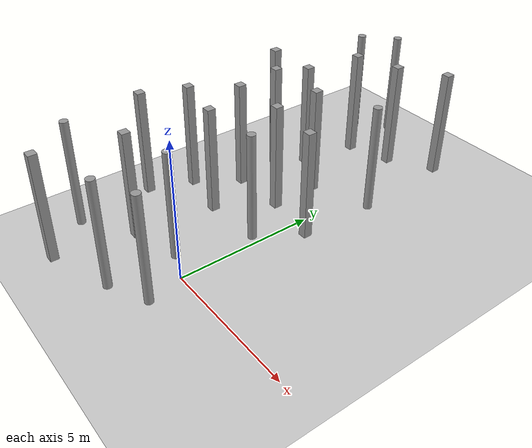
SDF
<sdf version="1.6">
 <world name="default">
  <model name="ground_plane">
   <static>1</static>
   <link name="link">
    <collision name="collision">
     <geometry><plane><normal>0 0 1</normal><size>100 100</size></plane></geometry>
    </collision>
    <visual name="visual">
     <cast_shadows>0</cast_shadows>
     <geometry><plane><normal>0 0 1</normal><size>100 100</size></plane></geometry>
     <material>
      <script><uri>file://media/materials/scripts/gazebo.material</uri><name>Gazebo/Gray</name></script>
     </material>
    </visual>
   </link>
  </model>
  <model name="unit_box">
   <link name="link">
    <inertial>
     <mass>1000</mass>
     <inertia><ixx>166.667</ixx><ixy>0</ixy><ixz>0</ixz><iyy>166.667</iyy><iyz>0</iyz><izz>166.667</izz></inertia>
    </inertial>
    <visual name="visual">
     <geometry><box><size>0.3 0.3 4</size></box></geometry>
     <material>
      <script><name>Gazebo/Grey</name><uri>file://media/materials/scripts/gazebo.material</uri></script>
      <shader type="vertex"><normal_map>__default__</normal_map></shader>
      <ambient>0.3 0.3 0.3 1</ambient>
      <diffuse>0.7 0.7 0.7 1</diffuse>
      <specular>0.01 0.01 0.01 1</specular>
      <emissive>0 0 0 1</emissive>
     </material>
    </visual>
    <collision name="collision">
     <geometry><box><size>0.3 0.3 4</size></box></geometry>
     <surface>
      <friction>
       <ode><mu>1</mu><mu2>1</mu2><fdir1>0 0 0</fdir1><slip1>0</slip1><slip2>0</slip2></ode>
       <torsional>
        <coefficient>1</coefficient>
        <patch_radius>0</patch_radius>
        <surface_radius>0</surface_radius>
        <use_patch_radius>1</use_patch_radius>
        <ode><slip>0</slip></ode>
       </torsional>
      </friction>
      <bounce><restitution_coefficient>0</restitution_coefficient><threshold>1e+06</threshold></bounce>
      <contact>
       <collide_without_contact>0</collide_without_contact>
       <collide_without_contact_bitmask>1</collide_without_contact_bitmask>
       <collide_bitmask>1</collide_bitmask>
       <ode>
        <soft_cfm>0</soft_cfm>
        <soft_erp>0.2</soft_erp>
        <kp>1e+13</kp>
        <kd>1</kd>
        <max_vel>0.01</max_vel>
        <min_depth>0</min_depth>
       </ode>
       <bullet>
        <split_impulse>1</split_impulse>
        <split_impulse_penetration_threshold>-0.01</split_impulse_penetration_threshold>
        <soft_cfm>0</soft_cfm>
        <soft_erp>0.2</soft_erp>
        <kp>1e+13</kp>
        <kd>1</kd>
       </bullet>
      </contact>
     </surface>
    </collision>
   </link>
   <static>0</static>
   <pose>-1.26732 4.71521 2 1e-05 -1.8e-05 -0.001323</pose>
  </model>
  <model name="unit_box_clone">
   <link name="link">
    <inertial>
     <mass>1000</mass>
     <inertia><ixx>166.667</ixx><ixy>0</ixy><ixz>0</ixz><iyy>166.667</iyy><iyz>0</iyz><izz>166.667</izz></inertia>
    </inertial>
    <visual name="visual">
     <geometry><box><size>0.3 0.3 4</size></box></geometry>
     <material>
      <script><name>Gazebo/Grey</name><uri>file://media/materials/scripts/gazebo.material</uri></script>
      <shader type="vertex"><normal_map>__default__</normal_map></shader>
      <ambient>0.3 0.3 0.3 1</ambient>
      <diffuse>0.7 0.7 0.7 1</diffuse>
      <specular>0.01 0.01 0.01 1</specular>
      <emissive>0 0 0 1</emissive>
     </material>
    </visual>
    <collision name="collision">
     <geometry><box><size>0.3 0.3 4</size></box></geometry>
     <surface>
      <friction>
       <ode><mu>1</mu><mu2>1</mu2><fdir1>0 0 0</fdir1><slip1>0</slip1><slip2>0</slip2></ode>
       <torsional>
        <coefficient>1</coefficient>
        <patch_radius>0</patch_radius>
        <surface_radius>0</surface_radius>
        <use_patch_radius>1</use_patch_radius>
        <ode><slip>0</slip></ode>
       </torsional>
      </friction>
      <bounce><restitution_coefficient>0</restitution_coefficient><threshold>1e+06</threshold></bounce>
      <contact>
       <collide_without_contact>0</collide_without_contact>
       <collide_without_contact_bitmask>1</collide_without_contact_bitmask>
       <collide_bitmask>1</collide_bitmask>
       <ode>
        <soft_cfm>0</soft_cfm>
        <soft_erp>0.2</soft_erp>
        <kp>1e+13</kp>
        <kd>1</kd>
        <max_vel>0.01</max_vel>
        <min_depth>0</min_depth>
       </ode>
       <bullet>
        <split_impulse>1</split_impulse>
        <split_impulse_penetration_threshold>-0.01</split_impulse_penetration_threshold>
        <soft_cfm>0</soft_cfm>
        <soft_erp>0.2</soft_erp>
        <kp>1e+13</kp>
        <kd>1</kd>
       </bullet>
      </contact>
     </surface>
    </collision>
   </link>
   <static>0</static>
   <pose>-2.76544 -0.051248 2 -1e-05 -7e-06 -0.002497</pose>
  </model>
  <model name="unit_box_clone_1">
   <link name="link">
    <inertial>
     <mass>1000</mass>
     <inertia><ixx>166.667</ixx><ixy>0</ixy><ixz>0</ixz><iyy>166.667</iyy><iyz>0</iyz><izz>166.667</izz></inertia>
    </inertial>
    <visual name="visual">
     <geometry><box><size>0.3 0.3 4</size></box></geometry>
     <material>
      <script><name>Gazebo/Grey</name><uri>file://media/materials/scripts/gazebo.material</uri></script>
      <shader type="vertex"><normal_map>__default__</normal_map></shader>
      <ambient>0.3 0.3 0.3 1</ambient>
      <diffuse>0.7 0.7 0.7 1</diffuse>
      <specular>0.01 0.01 0.01 1</specular>
      <emissive>0 0 0 1</emissive>
     </material>
    </visual>
    <collision name="collision">
     <geometry><box><size>0.3 0.3 4</size></box></geometry>
     <surface>
      <friction>
       <ode><mu>1</mu><mu2>1</mu2><fdir1>0 0 0</fdir1><slip1>0</slip1><slip2>0</slip2></ode>
       <torsional>
        <coefficient>1</coefficient>
        <patch_radius>0</patch_radius>
        <surface_radius>0</surface_radius>
        <use_patch_radius>1</use_patch_radius>
        <ode><slip>0</slip></ode>
       </torsional>
      </friction>
      <bounce><restitution_coefficient>0</restitution_coefficient><threshold>1e+06</threshold></bounce>
      <contact>
       <collide_without_contact>0</collide_without_contact>
       <collide_without_contact_bitmask>1</collide_without_contact_bitmask>
       <collide_bitmask>1</collide_bitmask>
       <ode>
        <soft_cfm>0</soft_cfm>
        <soft_erp>0.2</soft_erp>
        <kp>1e+13</kp>
        <kd>1</kd>
        <max_vel>0.01</max_vel>
        <min_depth>0</min_depth>
       </ode>
       <bullet>
        <split_impulse>1</split_impulse>
        <split_impulse_penetration_threshold>-0.01</split_impulse_penetration_threshold>
        <soft_cfm>0</soft_cfm>
        <soft_erp>0.2</soft_erp>
        <kp>1e+13</kp>
        <kd>1</kd>
       </bullet>
      </contact>
     </surface>
    </collision>
   </link>
   <static>0</static>
   <pose>-2.89919 7.41396 2 5e-06 1.3e-05 0.00093</pose>
  </model>
  <model name="unit_box_clone_17">
   <link name="link">
    <inertial>
     <mass>1000</mass>
     <inertia><ixx>166.667</ixx><ixy>0</ixy><ixz>0</ixz><iyy>166.667</iyy><iyz>0</iyz><izz>166.667</izz></inertia>
    </inertial>
    <visual name="visual">
     <geometry><box><size>0.3 0.3 4</size></box></geometry>
     <material>
      <script><name>Gazebo/Grey</name><uri>file://media/materials/scripts/gazebo.material</uri></script>
      <shader type="vertex"><normal_map>__default__</normal_map></shader>
      <ambient>0.3 0.3 0.3 1</ambient>
      <diffuse>0.7 0.7 0.7 1</diffuse>
      <specular>0.01 0.01 0.01 1</specular>
      <emissive>0 0 0 1</emissive>
     </material>
    </visual>
    <collision name="collision">
     <geometry><box><size>0.3 0.3 4</size></box></geometry>
     <surface>
      <friction>
       <ode><mu>1</mu><mu2>1</mu2><fdir1>0 0 0</fdir1><slip1>0</slip1><slip2>0</slip2></ode>
       <torsional>
        <coefficient>1</coefficient>
        <patch_radius>0</patch_radius>
        <surface_radius>0</surface_radius>
        <use_patch_radius>1</use_patch_radius>
        <ode><slip>0</slip></ode>
       </torsional>
      </friction>
      <bounce><restitution_coefficient>0</restitution_coefficient><threshold>1e+06</threshold></bounce>
      <contact>
       <collide_without_contact>0</collide_without_contact>
       <collide_without_contact_bitmask>1</collide_without_contact_bitmask>
       <collide_bitmask>1</collide_bitmask>
       <ode>
        <soft_cfm>0</soft_cfm>
        <soft_erp>0.2</soft_erp>
        <kp>1e+13</kp>
        <kd>1</kd>
        <max_vel>0.01</max_vel>
        <min_depth>0</min_depth>
       </ode>
       <bullet>
        <split_impulse>1</split_impulse>
        <split_impulse_penetration_threshold>-0.01</split_impulse_penetration_threshold>
        <soft_cfm>0</soft_cfm>
        <soft_erp>0.2</soft_erp>
        <kp>1e+13</kp>
        <kd>1</kd>
       </bullet>
      </contact>
     </surface>
    </collision>
   </link>
   <static>0</static>
   <pose>-2.44664 2.84688 2 1e-06 -2.9e-05 0.003248</pose>
  </model>
  <model name="unit_box_clone_19">
   <link name="link">
    <inertial>
     <mass>1000</mass>
     <inertia><ixx>166.667</ixx><ixy>0</ixy><ixz>0</ixz><iyy>166.667</iyy><iyz>0</iyz><izz>166.667</izz></inertia>
    </inertial>
    <visual name="visual">
     <geometry><box><size>0.3 0.3 4</size></box></geometry>
     <material>
      <script><name>Gazebo/Grey</name><uri>file://media/materials/scripts/gazebo.material</uri></script>
      <shader type="vertex"><normal_map>__default__</normal_map></shader>
      <ambient>0.3 0.3 0.3 1</ambient>
      <diffuse>0.7 0.7 0.7 1</diffuse>
      <specular>0.01 0.01 0.01 1</specular>
      <emissive>0 0 0 1</emissive>
     </material>
    </visual>
    <collision name="collision">
     <geometry><box><size>0.3 0.3 4</size></box></geometry>
     <surface>
      <friction>
       <ode><mu>1</mu><mu2>1</mu2><fdir1>0 0 0</fdir1><slip1>0</slip1><slip2>0</slip2></ode>
       <torsional>
        <coefficient>1</coefficient>
        <patch_radius>0</patch_radius>
        <surface_radius>0</surface_radius>
        <use_patch_radius>1</use_patch_radius>
        <ode><slip>0</slip></ode>
       </torsional>
      </friction>
      <bounce><restitution_coefficient>0</restitution_coefficient><threshold>1e+06</threshold></bounce>
      <contact>
       <collide_without_contact>0</collide_without_contact>
       <collide_without_contact_bitmask>1</collide_without_contact_bitmask>
       <collide_bitmask>1</collide_bitmask>
       <ode>
        <soft_cfm>0</soft_cfm>
        <soft_erp>0.2</soft_erp>
        <kp>1e+13</kp>
        <kd>1</kd>
        <max_vel>0.01</max_vel>
        <min_depth>0</min_depth>
       </ode>
       <bullet>
        <split_impulse>1</split_impulse>
        <split_impulse_penetration_threshold>-0.01</split_impulse_penetration_threshold>
        <soft_cfm>0</soft_cfm>
        <soft_erp>0.2</soft_erp>
        <kp>1e+13</kp>
        <kd>1</kd>
       </bullet>
      </contact>
     </surface>
    </collision>
   </link>
   <static>0</static>
   <pose>-1.32799 6.4493 2 1e-05 -1.8e-05 -0.001323</pose>
  </model>
  <model name="unit_box_clone_20">
   <link name="link">
    <inertial>
     <mass>1000</mass>
     <inertia><ixx>166.667</ixx><ixy>0</ixy><ixz>0</ixz><iyy>166.667</iyy><iyz>0</iyz><izz>166.667</izz></inertia>
    </inertial>
    <visual name="visual">
     <geometry><box><size>0.3 0.3 4</size></box></geometry>
     <material>
      <script><name>Gazebo/Grey</name><uri>file://media/materials/scripts/gazebo.material</uri></script>
      <shader type="vertex"><normal_map>__default__</normal_map></shader>
      <ambient>0.3 0.3 0.3 1</ambient>
      <diffuse>0.7 0.7 0.7 1</diffuse>
      <specular>0.01 0.01 0.01 1</specular>
      <emissive>0 0 0 1</emissive>
     </material>
    </visual>
    <collision name="collision">
     <geometry><box><size>0.3 0.3 4</size></box></geometry>
     <surface>
      <friction>
       <ode><mu>1</mu><mu2>1</mu2><fdir1>0 0 0</fdir1><slip1>0</slip1><slip2>0</slip2></ode>
       <torsional>
        <coefficient>1</coefficient>
        <patch_radius>0</patch_radius>
        <surface_radius>0</surface_radius>
        <use_patch_radius>1</use_patch_radius>
        <ode><slip>0</slip></ode>
       </torsional>
      </friction>
      <bounce><restitution_coefficient>0</restitution_coefficient><threshold>1e+06</threshold></bounce>
      <contact>
       <collide_without_contact>0</collide_without_contact>
       <collide_without_contact_bitmask>1</collide_without_contact_bitmask>
       <collide_bitmask>1</collide_bitmask>
       <ode>
        <soft_cfm>0</soft_cfm>
        <soft_erp>0.2</soft_erp>
        <kp>1e+13</kp>
        <kd>1</kd>
        <max_vel>0.01</max_vel>
        <min_depth>0</min_depth>
       </ode>
       <bullet>
        <split_impulse>1</split_impulse>
        <split_impulse_penetration_threshold>-0.01</split_impulse_penetration_threshold>
        <soft_cfm>0</soft_cfm>
        <soft_erp>0.2</soft_erp>
        <kp>1e+13</kp>
        <kd>1</kd>
       </bullet>
      </contact>
     </surface>
    </collision>
   </link>
   <static>0</static>
   <pose>0.641808 4.48448 2.00001 0 -4.9e-05 0.001002</pose>
  </model>
  <model name="unit_box_clone_21">
   <link name="link">
    <inertial>
     <mass>1000</mass>
     <inertia><ixx>166.667</ixx><ixy>0</ixy><ixz>0</ixz><iyy>166.667</iyy><iyz>0</iyz><izz>166.667</izz></inertia>
    </inertial>
    <visual name="visual">
     <geometry><box><size>0.3 0.3 4</size></box></geometry>
     <material>
      <script><name>Gazebo/Grey</name><uri>file://media/materials/scripts/gazebo.material</uri></script>
      <shader type="vertex"><normal_map>__default__</normal_map></shader>
      <ambient>0.3 0.3 0.3 1</ambient>
      <diffuse>0.7 0.7 0.7 1</diffuse>
      <specular>0.01 0.01 0.01 1</specular>
      <emissive>0 0 0 1</emissive>
     </material>
    </visual>
    <collision name="collision">
     <geometry><box><size>0.3 0.3 4</size></box></geometry>
     <surface>
      <friction>
       <ode><mu>1</mu><mu2>1</mu2><fdir1>0 0 0</fdir1><slip1>0</slip1><slip2>0</slip2></ode>
       <torsional>
        <coefficient>1</coefficient>
        <patch_radius>0</patch_radius>
        <surface_radius>0</surface_radius>
        <use_patch_radius>1</use_patch_radius>
        <ode><slip>0</slip></ode>
       </torsional>
      </friction>
      <bounce><restitution_coefficient>0</restitution_coefficient><threshold>1e+06</threshold></bounce>
      <contact>
       <collide_without_contact>0</collide_without_contact>
       <collide_without_contact_bitmask>1</collide_without_contact_bitmask>
       <collide_bitmask>1</collide_bitmask>
       <ode>
        <soft_cfm>0</soft_cfm>
        <soft_erp>0.2</soft_erp>
        <kp>1e+13</kp>
        <kd>1</kd>
        <max_vel>0.01</max_vel>
        <min_depth>0</min_depth>
       </ode>
       <bullet>
        <split_impulse>1</split_impulse>
        <split_impulse_penetration_threshold>-0.01</split_impulse_penetration_threshold>
        <soft_cfm>0</soft_cfm>
        <soft_erp>0.2</soft_erp>
        <kp>1e+13</kp>
        <kd>1</kd>
       </bullet>
      </contact>
     </surface>
    </collision>
   </link>
   <static>0</static>
   <pose>-2.57161 9.52536 2 -1.3e-05 -1.8e-05 -0.00716</pose>
  </model>
  <model name="unit_box_clone_22">
   <link name="link">
    <inertial>
     <mass>1000</mass>
     <inertia><ixx>166.667</ixx><ixy>0</ixy><ixz>0</ixz><iyy>166.667</iyy><iyz>0</iyz><izz>166.667</izz></inertia>
    </inertial>
    <visual name="visual">
     <geometry><box><size>0.3 0.3 4</size></box></geometry>
     <material>
      <script><name>Gazebo/Grey</name><uri>file://media/materials/scripts/gazebo.material</uri></script>
      <shader type="vertex"><normal_map>__default__</normal_map></shader>
      <ambient>0.3 0.3 0.3 1</ambient>
      <diffuse>0.7 0.7 0.7 1</diffuse>
      <specular>0.01 0.01 0.01 1</specular>
      <emissive>0 0 0 1</emissive>
     </material>
    </visual>
    <collision name="collision">
     <geometry><box><size>0.3 0.3 4</size></box></geometry>
     <surface>
      <friction>
       <ode><mu>1</mu><mu2>1</mu2><fdir1>0 0 0</fdir1><slip1>0</slip1><slip2>0</slip2></ode>
       <torsional>
        <coefficient>1</coefficient>
        <patch_radius>0</patch_radius>
        <surface_radius>0</surface_radius>
        <use_patch_radius>1</use_patch_radius>
        <ode><slip>0</slip></ode>
       </torsional>
      </friction>
      <bounce><restitution_coefficient>0</restitution_coefficient><threshold>1e+06</threshold></bounce>
      <contact>
       <collide_without_contact>0</collide_without_contact>
       <collide_without_contact_bitmask>1</collide_without_contact_bitmask>
       <collide_bitmask>1</collide_bitmask>
       <ode>
        <soft_cfm>0</soft_cfm>
        <soft_erp>0.2</soft_erp>
        <kp>1e+13</kp>
        <kd>1</kd>
        <max_vel>0.01</max_vel>
        <min_depth>0</min_depth>
       </ode>
       <bullet>
        <split_impulse>1</split_impulse>
        <split_impulse_penetration_threshold>-0.01</split_impulse_penetration_threshold>
        <soft_cfm>0</soft_cfm>
        <soft_erp>0.2</soft_erp>
        <kp>1e+13</kp>
        <kd>1</kd>
       </bullet>
      </contact>
     </surface>
    </collision>
   </link>
   <static>0</static>
   <pose>-0.999906 10 2 2e-06 -2.8e-05 -0.017044</pose>
  </model>
  <model name="unit_box_clone_24">
   <link name="link">
    <inertial>
     <mass>1000</mass>
     <inertia><ixx>166.667</ixx><ixy>0</ixy><ixz>0</ixz><iyy>166.667</iyy><iyz>0</iyz><izz>166.667</izz></inertia>
    </inertial>
    <visual name="visual">
     <geometry><box><size>0.3 0.3 4</size></box></geometry>
     <material>
      <script><name>Gazebo/Grey</name><uri>file://media/materials/scripts/gazebo.material</uri></script>
      <shader type="vertex"><normal_map>__default__</normal_map></shader>
      <ambient>0.3 0.3 0.3 1</ambient>
      <diffuse>0.7 0.7 0.7 1</diffuse>
      <specular>0.01 0.01 0.01 1</specular>
      <emissive>0 0 0 1</emissive>
     </material>
    </visual>
    <collision name="collision">
     <geometry><box><size>0.3 0.3 4</size></box></geometry>
     <surface>
      <friction>
       <ode><mu>1</mu><mu2>1</mu2><fdir1>0 0 0</fdir1><slip1>0</slip1><slip2>0</slip2></ode>
       <torsional>
        <coefficient>1</coefficient>
        <patch_radius>0</patch_radius>
        <surface_radius>0</surface_radius>
        <use_patch_radius>1</use_patch_radius>
        <ode><slip>0</slip></ode>
       </torsional>
      </friction>
      <bounce><restitution_coefficient>0</restitution_coefficient><threshold>1e+06</threshold></bounce>
      <contact>
       <collide_without_contact>0</collide_without_contact>
       <collide_without_contact_bitmask>1</collide_without_contact_bitmask>
       <collide_bitmask>1</collide_bitmask>
       <ode>
        <soft_cfm>0</soft_cfm>
        <soft_erp>0.2</soft_erp>
        <kp>1e+13</kp>
        <kd>1</kd>
        <max_vel>0.01</max_vel>
        <min_depth>0</min_depth>
       </ode>
       <bullet>
        <split_impulse>1</split_impulse>
        <split_impulse_penetration_threshold>-0.01</split_impulse_penetration_threshold>
        <soft_cfm>0</soft_cfm>
        <soft_erp>0.2</soft_erp>
        <kp>1e+13</kp>
        <kd>1</kd>
       </bullet>
      </contact>
     </surface>
    </collision>
   </link>
   <static>0</static>
   <pose>-4.80952 7.40663 2 5e-06 -2e-05 0.001419</pose>
  </model>
  <model name="unit_box_clone_25">
   <link name="link">
    <inertial>
     <mass>1000</mass>
     <inertia><ixx>166.667</ixx><ixy>0</ixy><ixz>0</ixz><iyy>166.667</iyy><iyz>0</iyz><izz>166.667</izz></inertia>
    </inertial>
    <visual name="visual">
     <geometry><box><size>0.3 0.3 4</size></box></geometry>
     <material>
      <script><name>Gazebo/Grey</name><uri>file://media/materials/scripts/gazebo.material</uri></script>
      <shader type="vertex"><normal_map>__default__</normal_map></shader>
      <ambient>0.3 0.3 0.3 1</ambient>
      <diffuse>0.7 0.7 0.7 1</diffuse>
      <specular>0.01 0.01 0.01 1</specular>
      <emissive>0 0 0 1</emissive>
     </material>
    </visual>
    <collision name="collision">
     <geometry><box><size>0.3 0.3 4</size></box></geometry>
     <surface>
      <friction>
       <ode><mu>1</mu><mu2>1</mu2><fdir1>0 0 0</fdir1><slip1>0</slip1><slip2>0</slip2></ode>
       <torsional>
        <coefficient>1</coefficient>
        <patch_radius>0</patch_radius>
        <surface_radius>0</surface_radius>
        <use_patch_radius>1</use_patch_radius>
        <ode><slip>0</slip></ode>
       </torsional>
      </friction>
      <bounce><restitution_coefficient>0</restitution_coefficient><threshold>1e+06</threshold></bounce>
      <contact>
       <collide_without_contact>0</collide_without_contact>
       <collide_without_contact_bitmask>1</collide_without_contact_bitmask>
       <collide_bitmask>1</collide_bitmask>
       <ode>
        <soft_cfm>0</soft_cfm>
        <soft_erp>0.2</soft_erp>
        <kp>1e+13</kp>
        <kd>1</kd>
        <max_vel>0.01</max_vel>
        <min_depth>0</min_depth>
       </ode>
       <bullet>
        <split_impulse>1</split_impulse>
        <split_impulse_penetration_threshold>-0.01</split_impulse_penetration_threshold>
        <soft_cfm>0</soft_cfm>
        <soft_erp>0.2</soft_erp>
        <kp>1e+13</kp>
        <kd>1</kd>
       </bullet>
      </contact>
     </surface>
    </collision>
   </link>
   <static>0</static>
   <pose>-3.52144 6.42305 2 1e-05 6e-06 -0.006032</pose>
  </model>
  <model name="unit_box_clone_26">
   <link name="link">
    <inertial>
     <mass>1000</mass>
     <inertia><ixx>166.667</ixx><ixy>0</ixy><ixz>0</ixz><iyy>166.667</iyy><iyz>0</iyz><izz>166.667</izz></inertia>
    </inertial>
    <visual name="visual">
     <geometry><box><size>0.3 0.3 4</size></box></geometry>
     <material>
      <script><name>Gazebo/Grey</name><uri>file://media/materials/scripts/gazebo.material</uri></script>
      <shader type="vertex"><normal_map>__default__</normal_map></shader>
      <ambient>0.3 0.3 0.3 1</ambient>
      <diffuse>0.7 0.7 0.7 1</diffuse>
      <specular>0.01 0.01 0.01 1</specular>
      <emissive>0 0 0 1</emissive>
     </material>
    </visual>
    <collision name="collision">
     <geometry><box><size>0.3 0.3 4</size></box></geometry>
     <surface>
      <friction>
       <ode><mu>1</mu><mu2>1</mu2><fdir1>0 0 0</fdir1><slip1>0</slip1><slip2>0</slip2></ode>
       <torsional>
        <coefficient>1</coefficient>
        <patch_radius>0</patch_radius>
        <surface_radius>0</surface_radius>
        <use_patch_radius>1</use_patch_radius>
        <ode><slip>0</slip></ode>
       </torsional>
      </friction>
      <bounce><restitution_coefficient>0</restitution_coefficient><threshold>1e+06</threshold></bounce>
      <contact>
       <collide_without_contact>0</collide_without_contact>
       <collide_without_contact_bitmask>1</collide_without_contact_bitmask>
       <collide_bitmask>1</collide_bitmask>
       <ode>
        <soft_cfm>0</soft_cfm>
        <soft_erp>0.2</soft_erp>
        <kp>1e+13</kp>
        <kd>1</kd>
        <max_vel>0.01</max_vel>
        <min_depth>0</min_depth>
       </ode>
       <bullet>
        <split_impulse>1</split_impulse>
        <split_impulse_penetration_threshold>-0.01</split_impulse_penetration_threshold>
        <soft_cfm>0</soft_cfm>
        <soft_erp>0.2</soft_erp>
        <kp>1e+13</kp>
        <kd>1</kd>
       </bullet>
      </contact>
     </surface>
    </collision>
   </link>
   <static>0</static>
   <pose>-3.24143 4.64159 2 -3e-06 2.8e-05 -6.6e-05</pose>
  </model>
  <model name="unit_box_clone_27">
   <link name="link">
    <inertial>
     <mass>1000</mass>
     <inertia><ixx>166.667</ixx><ixy>0</ixy><ixz>0</ixz><iyy>166.667</iyy><iyz>0</iyz><izz>166.667</izz></inertia>
    </inertial>
    <visual name="visual">
     <geometry><box><size>0.3 0.3 4</size></box></geometry>
     <material>
      <script><name>Gazebo/Grey</name><uri>file://media/materials/scripts/gazebo.material</uri></script>
      <shader type="vertex"><normal_map>__default__</normal_map></shader>
      <ambient>0.3 0.3 0.3 1</ambient>
      <diffuse>0.7 0.7 0.7 1</diffuse>
      <specular>0.01 0.01 0.01 1</specular>
      <emissive>0 0 0 1</emissive>
     </material>
    </visual>
    <collision name="collision">
     <geometry><box><size>0.3 0.3 4</size></box></geometry>
     <surface>
      <friction>
       <ode><mu>1</mu><mu2>1</mu2><fdir1>0 0 0</fdir1><slip1>0</slip1><slip2>0</slip2></ode>
       <torsional>
        <coefficient>1</coefficient>
        <patch_radius>0</patch_radius>
        <surface_radius>0</surface_radius>
        <use_patch_radius>1</use_patch_radius>
        <ode><slip>0</slip></ode>
       </torsional>
      </friction>
      <bounce><restitution_coefficient>0</restitution_coefficient><threshold>1e+06</threshold></bounce>
      <contact>
       <collide_without_contact>0</collide_without_contact>
       <collide_without_contact_bitmask>1</collide_without_contact_bitmask>
       <collide_bitmask>1</collide_bitmask>
       <ode>
        <soft_cfm>0</soft_cfm>
        <soft_erp>0.2</soft_erp>
        <kp>1e+13</kp>
        <kd>1</kd>
        <max_vel>0.01</max_vel>
        <min_depth>0</min_depth>
       </ode>
       <bullet>
        <split_impulse>1</split_impulse>
        <split_impulse_penetration_threshold>-0.01</split_impulse_penetration_threshold>
        <soft_cfm>0</soft_cfm>
        <soft_erp>0.2</soft_erp>
        <kp>1e+13</kp>
        <kd>1</kd>
       </bullet>
      </contact>
     </surface>
    </collision>
   </link>
   <static>0</static>
   <pose>-4.80581 1.58857 2 2.8e-05 -0 0.000838</pose>
  </model>
  <model name="unit_cylinder_clone">
   <link name="link">
    <inertial>
     <mass>1000</mass>
     <inertia><ixx>145.833</ixx><ixy>0</ixy><ixz>0</ixz><iyy>145.833</iyy><iyz>0</iyz><izz>125</izz></inertia>
    </inertial>
    <visual name="visual">
     <geometry><cylinder><radius>0.15</radius><length>4</length></cylinder></geometry>
     <material>
      <script><name>Gazebo/Grey</name><uri>file://media/materials/scripts/gazebo.material</uri></script>
      <shader type="vertex"><normal_map>__default__</normal_map></shader>
      <ambient>0.3 0.3 0.3 1</ambient>
      <diffuse>0.7 0.7 0.7 1</diffuse>
      <specular>0.01 0.01 0.01 1</specular>
      <emissive>0 0 0 1</emissive>
     </material>
    </visual>
    <collision name="collision">
     <geometry><cylinder><radius>0.15</radius><length>4</length></cylinder></geometry>
     <surface>
      <friction>
       <ode><mu>1</mu><mu2>1</mu2><fdir1>0 0 0</fdir1><slip1>0</slip1><slip2>0</slip2></ode>
       <torsional>
        <coefficient>1</coefficient>
        <patch_radius>0</patch_radius>
        <surface_radius>0</surface_radius>
        <use_patch_radius>1</use_patch_radius>
        <ode><slip>0</slip></ode>
       </torsional>
      </friction>
      <bounce><restitution_coefficient>0</restitution_coefficient><threshold>1e+06</threshold></bounce>
      <contact>
       <collide_without_contact>0</collide_without_contact>
       <collide_without_contact_bitmask>1</collide_without_contact_bitmask>
       <collide_bitmask>1</collide_bitmask>
       <ode>
        <soft_cfm>0</soft_cfm>
        <soft_erp>0.2</soft_erp>
        <kp>1e+13</kp>
        <kd>1</kd>
        <max_vel>0.01</max_vel>
        <min_depth>0</min_depth>
       </ode>
       <bullet>
        <split_impulse>1</split_impulse>
        <split_impulse_penetration_threshold>-0.01</split_impulse_penetration_threshold>
        <soft_cfm>0</soft_cfm>
        <soft_erp>0.2</soft_erp>
        <kp>1e+13</kp>
        <kd>1</kd>
       </bullet>
      </contact>
     </surface>
    </collision>
   </link>
   <static>0</static>
   <pose>-1.01278 0.422883 1.99998 -2e-06 -0 -0.131459</pose>
  </model>
  <model name="unit_cylinder_clone_3">
   <link name="link">
    <inertial>
     <mass>1000</mass>
     <inertia><ixx>145.833</ixx><ixy>0</ixy><ixz>0</ixz><iyy>145.833</iyy><iyz>0</iyz><izz>125</izz></inertia>
    </inertial>
    <visual name="visual">
     <geometry><cylinder><radius>0.15</radius><length>4</length></cylinder></geometry>
     <material>
      <script><name>Gazebo/Grey</name><uri>file://media/materials/scripts/gazebo.material</uri></script>
      <shader type="vertex"><normal_map>__default__</normal_map></shader>
      <ambient>0.3 0.3 0.3 1</ambient>
      <diffuse>0.7 0.7 0.7 1</diffuse>
      <specular>0.01 0.01 0.01 1</specular>
      <emissive>0 0 0 1</emissive>
     </material>
    </visual>
    <collision name="collision">
     <geometry><cylinder><radius>0.15</radius><length>4</length></cylinder></geometry>
     <surface>
      <friction>
       <ode><mu>1</mu><mu2>1</mu2><fdir1>0 0 0</fdir1><slip1>0</slip1><slip2>0</slip2></ode>
       <torsional>
        <coefficient>1</coefficient>
        <patch_radius>0</patch_radius>
        <surface_radius>0</surface_radius>
        <use_patch_radius>1</use_patch_radius>
        <ode><slip>0</slip></ode>
       </torsional>
      </friction>
      <bounce><restitution_coefficient>0</restitution_coefficient><threshold>1e+06</threshold></bounce>
      <contact>
       <collide_without_contact>0</collide_without_contact>
       <collide_without_contact_bitmask>1</collide_without_contact_bitmask>
       <collide_bitmask>1</collide_bitmask>
       <ode>
        <soft_cfm>0</soft_cfm>
        <soft_erp>0.2</soft_erp>
        <kp>1e+13</kp>
        <kd>1</kd>
        <max_vel>0.01</max_vel>
        <min_depth>0</min_depth>
       </ode>
       <bullet>
        <split_impulse>1</split_impulse>
        <split_impulse_penetration_threshold>-0.01</split_impulse_penetration_threshold>
        <soft_cfm>0</soft_cfm>
        <soft_erp>0.2</soft_erp>
        <kp>1e+13</kp>
        <kd>1</kd>
       </bullet>
      </contact>
     </surface>
    </collision>
   </link>
   <static>0</static>
   <pose>0.76239 7.25464 1.99998 -1e-06 1e-06 -0.129996</pose>
  </model>
  <model name="unit_cylinder_clone_1_clone_8">
   <link name="link">
    <inertial>
     <mass>1000</mass>
     <inertia><ixx>145.833</ixx><ixy>0</ixy><ixz>0</ixz><iyy>145.833</iyy><iyz>0</iyz><izz>125</izz></inertia>
    </inertial>
    <visual name="visual">
     <geometry><cylinder><radius>0.15</radius><length>4</length></cylinder></geometry>
     <material>
      <script><name>Gazebo/Grey</name><uri>file://media/materials/scripts/gazebo.material</uri></script>
      <shader type="vertex"><normal_map>__default__</normal_map></shader>
      <ambient>0.3 0.3 0.3 1</ambient>
      <diffuse>0.7 0.7 0.7 1</diffuse>
      <specular>0.01 0.01 0.01 1</specular>
      <emissive>0 0 0 1</emissive>
     </material>
    </visual>
    <collision name="collision">
     <geometry><cylinder><radius>0.15</radius><length>4</length></cylinder></geometry>
     <surface>
      <friction>
       <ode><mu>1</mu><mu2>1</mu2><fdir1>0 0 0</fdir1><slip1>0</slip1><slip2>0</slip2></ode>
       <torsional>
        <coefficient>1</coefficient>
        <patch_radius>0</patch_radius>
        <surface_radius>0</surface_radius>
        <use_patch_radius>1</use_patch_radius>
        <ode><slip>0</slip></ode>
       </torsional>
      </friction>
      <bounce><restitution_coefficient>0</restitution_coefficient><threshold>1e+06</threshold></bounce>
      <contact>
       <collide_without_contact>0</collide_without_contact>
       <collide_without_contact_bitmask>1</collide_without_contact_bitmask>
       <collide_bitmask>1</collide_bitmask>
       <ode>
        <soft_cfm>0</soft_cfm>
        <soft_erp>0.2</soft_erp>
        <kp>1e+13</kp>
        <kd>1</kd>
        <max_vel>0.01</max_vel>
        <min_depth>0</min_depth>
       </ode>
       <bullet>
        <split_impulse>1</split_impulse>
        <split_impulse_penetration_threshold>-0.01</split_impulse_penetration_threshold>
        <soft_cfm>0</soft_cfm>
        <soft_erp>0.2</soft_erp>
        <kp>1e+13</kp>
        <kd>1</kd>
       </bullet>
      </contact>
     </surface>
    </collision>
   </link>
   <static>0</static>
   <pose>0.303926 -1.2932 1.99995 -0.000268 5e-05 -0.61097</pose>
  </model>
  <model name="unit_cylinder_clone_1_clone_11">
   <link name="link">
    <inertial>
     <mass>1000</mass>
     <inertia><ixx>145.833</ixx><ixy>0</ixy><ixz>0</ixz><iyy>145.833</iyy><iyz>0</iyz><izz>125</izz></inertia>
    </inertial>
    <visual name="visual">
     <geometry><cylinder><radius>0.15</radius><length>4</length></cylinder></geometry>
     <material>
      <script><name>Gazebo/Grey</name><uri>file://media/materials/scripts/gazebo.material</uri></script>
      <shader type="vertex"><normal_map>__default__</normal_map></shader>
      <ambient>0.3 0.3 0.3 1</ambient>
      <diffuse>0.7 0.7 0.7 1</diffuse>
      <specular>0.01 0.01 0.01 1</specular>
      <emissive>0 0 0 1</emissive>
     </material>
    </visual>
    <collision name="collision">
     <geometry><cylinder><radius>0.15</radius><length>4</length></cylinder></geometry>
     <surface>
      <friction>
       <ode><mu>1</mu><mu2>1</mu2><fdir1>0 0 0</fdir1><slip1>0</slip1><slip2>0</slip2></ode>
       <torsional>
        <coefficient>1</coefficient>
        <patch_radius>0</patch_radius>
        <surface_radius>0</surface_radius>
        <use_patch_radius>1</use_patch_radius>
        <ode><slip>0</slip></ode>
       </torsional>
      </friction>
      <bounce><restitution_coefficient>0</restitution_coefficient><threshold>1e+06</threshold></bounce>
      <contact>
       <collide_without_contact>0</collide_without_contact>
       <collide_without_contact_bitmask>1</collide_without_contact_bitmask>
       <collide_bitmask>1</collide_bitmask>
       <ode>
        <soft_cfm>0</soft_cfm>
        <soft_erp>0.2</soft_erp>
        <kp>1e+13</kp>
        <kd>1</kd>
        <max_vel>0.01</max_vel>
        <min_depth>0</min_depth>
       </ode>
       <bullet>
        <split_impulse>1</split_impulse>
        <split_impulse_penetration_threshold>-0.01</split_impulse_penetration_threshold>
        <soft_cfm>0</soft_cfm>
        <soft_erp>0.2</soft_erp>
        <kp>1e+13</kp>
        <kd>1</kd>
       </bullet>
      </contact>
     </surface>
    </collision>
   </link>
   <static>0</static>
   <pose>-4.47728 -1.2562 1.99995 -0.000268 5e-05 -0.609851</pose>
  </model>
  <model name="unit_cylinder_clone_1_clone_33">
   <link name="link">
    <inertial>
     <mass>1000</mass>
     <inertia><ixx>145.833</ixx><ixy>0</ixy><ixz>0</ixz><iyy>145.833</iyy><iyz>0</iyz><izz>125</izz></inertia>
    </inertial>
    <visual name="visual">
     <geometry><cylinder><radius>0.15</radius><length>4</length></cylinder></geometry>
     <material>
      <script><name>Gazebo/Grey</name><uri>file://media/materials/scripts/gazebo.material</uri></script>
      <shader type="vertex"><normal_map>__default__</normal_map></shader>
      <ambient>0.3 0.3 0.3 1</ambient>
      <diffuse>0.7 0.7 0.7 1</diffuse>
      <specular>0.01 0.01 0.01 1</specular>
      <emissive>0 0 0 1</emissive>
     </material>
    </visual>
    <collision name="collision">
     <geometry><cylinder><radius>0.15</radius><length>4</length></cylinder></geometry>
     <surface>
      <friction>
       <ode><mu>1</mu><mu2>1</mu2><fdir1>0 0 0</fdir1><slip1>0</slip1><slip2>0</slip2></ode>
       <torsional>
        <coefficient>1</coefficient>
        <patch_radius>0</patch_radius>
        <surface_radius>0</surface_radius>
        <use_patch_radius>1</use_patch_radius>
        <ode><slip>0</slip></ode>
       </torsional>
      </friction>
      <bounce><restitution_coefficient>0</restitution_coefficient><threshold>1e+06</threshold></bounce>
      <contact>
       <collide_without_contact>0</collide_without_contact>
       <collide_without_contact_bitmask>1</collide_without_contact_bitmask>
       <collide_bitmask>1</collide_bitmask>
       <ode>
        <soft_cfm>0</soft_cfm>
        <soft_erp>0.2</soft_erp>
        <kp>1e+13</kp>
        <kd>1</kd>
        <max_vel>0.01</max_vel>
        <min_depth>0</min_depth>
       </ode>
       <bullet>
        <split_impulse>1</split_impulse>
        <split_impulse_penetration_threshold>-0.01</split_impulse_penetration_threshold>
        <soft_cfm>0</soft_cfm>
        <soft_erp>0.2</soft_erp>
        <kp>1e+13</kp>
        <kd>1</kd>
       </bullet>
      </contact>
     </surface>
    </collision>
   </link>
   <static>0</static>
   <pose>-1.04606 -1.98067 1.99995 -0.000268 5.1e-05 -0.603917</pose>
  </model>
  <model name="unit_cylinder_clone_1_clone_7_clone_2">
   <link name="link">
    <inertial>
     <mass>1000</mass>
     <inertia><ixx>145.833</ixx><ixy>0</ixy><ixz>0</ixz><iyy>145.833</iyy><iyz>0</iyz><izz>125</izz></inertia>
    </inertial>
    <visual name="visual">
     <geometry><cylinder><radius>0.15</radius><length>4</length></cylinder></geometry>
     <material>
      <script><name>Gazebo/Grey</name><uri>file://media/materials/scripts/gazebo.material</uri></script>
      <shader type="vertex"><normal_map>__default__</normal_map></shader>
      <ambient>0.3 0.3 0.3 1</ambient>
      <diffuse>0.7 0.7 0.7 1</diffuse>
      <specular>0.01 0.01 0.01 1</specular>
      <emissive>0 0 0 1</emissive>
     </material>
    </visual>
    <collision name="collision">
     <geometry><cylinder><radius>0.15</radius><length>4</length></cylinder></geometry>
     <surface>
      <friction>
       <ode><mu>1</mu><mu2>1</mu2><fdir1>0 0 0</fdir1><slip1>0</slip1><slip2>0</slip2></ode>
       <torsional>
        <coefficient>1</coefficient>
        <patch_radius>0</patch_radius>
        <surface_radius>0</surface_radius>
        <use_patch_radius>1</use_patch_radius>
        <ode><slip>0</slip></ode>
       </torsional>
      </friction>
      <bounce><restitution_coefficient>0</restitution_coefficient><threshold>1e+06</threshold></bounce>
      <contact>
       <collide_without_contact>0</collide_without_contact>
       <collide_without_contact_bitmask>1</collide_without_contact_bitmask>
       <collide_bitmask>1</collide_bitmask>
       <ode>
        <soft_cfm>0</soft_cfm>
        <soft_erp>0.2</soft_erp>
        <kp>1e+13</kp>
        <kd>1</kd>
        <max_vel>0.01</max_vel>
        <min_depth>0</min_depth>
       </ode>
       <bullet>
        <split_impulse>1</split_impulse>
        <split_impulse_penetration_threshold>-0.01</split_impulse_penetration_threshold>
        <soft_cfm>0</soft_cfm>
        <soft_erp>0.2</soft_erp>
        <kp>1e+13</kp>
        <kd>1</kd>
       </bullet>
      </contact>
     </surface>
    </collision>
   </link>
   <static>0</static>
   <pose>-2.81965 11.8669 1.99995 -0.000268 4.9e-05 -0.61471</pose>
  </model>
  <model name="unit_cylinder_clone_1_clone_7_clone_7">
   <link name="link">
    <inertial>
     <mass>1000</mass>
     <inertia><ixx>145.833</ixx><ixy>0</ixy><ixz>0</ixz><iyy>145.833</iyy><iyz>0</iyz><izz>125</izz></inertia>
    </inertial>
    <visual name="visual">
     <geometry><cylinder><radius>0.15</radius><length>4</length></cylinder></geometry>
     <material>
      <script><name>Gazebo/Grey</name><uri>file://media/materials/scripts/gazebo.material</uri></script>
      <shader type="vertex"><normal_map>__default__</normal_map></shader>
      <ambient>0.3 0.3 0.3 1</ambient>
      <diffuse>0.7 0.7 0.7 1</diffuse>
      <specular>0.01 0.01 0.01 1</specular>
      <emissive>0 0 0 1</emissive>
     </material>
    </visual>
    <collision name="collision">
     <geometry><cylinder><radius>0.15</radius><length>4</length></cylinder></geometry>
     <surface>
      <friction>
       <ode><mu>1</mu><mu2>1</mu2><fdir1>0 0 0</fdir1><slip1>0</slip1><slip2>0</slip2></ode>
       <torsional>
        <coefficient>1</coefficient>
        <patch_radius>0</patch_radius>
        <surface_radius>0</surface_radius>
        <use_patch_radius>1</use_patch_radius>
        <ode><slip>0</slip></ode>
       </torsional>
      </friction>
      <bounce><restitution_coefficient>0</restitution_coefficient><threshold>1e+06</threshold></bounce>
      <contact>
       <collide_without_contact>0</collide_without_contact>
       <collide_without_contact_bitmask>1</collide_without_contact_bitmask>
       <collide_bitmask>1</collide_bitmask>
       <ode>
        <soft_cfm>0</soft_cfm>
        <soft_erp>0.2</soft_erp>
        <kp>1e+13</kp>
        <kd>1</kd>
        <max_vel>0.01</max_vel>
        <min_depth>0</min_depth>
       </ode>
       <bullet>
        <split_impulse>1</split_impulse>
        <split_impulse_penetration_threshold>-0.01</split_impulse_penetration_threshold>
        <soft_cfm>0</soft_cfm>
        <soft_erp>0.2</soft_erp>
        <kp>1e+13</kp>
        <kd>1</kd>
       </bullet>
      </contact>
     </surface>
    </collision>
   </link>
   <static>0</static>
   <pose>-3.81685 10.9214 1.99995 -0.000268 4.9e-05 -0.61471</pose>
  </model>
  <model name="unit_cylinder_clone_1_clone_7_clone_10">
   <link name="link">
    <inertial>
     <mass>1000</mass>
     <inertia><ixx>145.833</ixx><ixy>0</ixy><ixz>0</ixz><iyy>145.833</iyy><iyz>0</iyz><izz>125</izz></inertia>
    </inertial>
    <visual name="visual">
     <geometry><cylinder><radius>0.15</radius><length>4</length></cylinder></geometry>
     <material>
      <script><name>Gazebo/Grey</name><uri>file://media/materials/scripts/gazebo.material</uri></script>
      <shader type="vertex"><normal_map>__default__</normal_map></shader>
      <ambient>0.3 0.3 0.3 1</ambient>
      <diffuse>0.7 0.7 0.7 1</diffuse>
      <specular>0.01 0.01 0.01 1</specular>
      <emissive>0 0 0 1</emissive>
     </material>
    </visual>
    <collision name="collision">
     <geometry><cylinder><radius>0.15</radius><length>4</length></cylinder></geometry>
     <surface>
      <friction>
       <ode><mu>1</mu><mu2>1</mu2><fdir1>0 0 0</fdir1><slip1>0</slip1><slip2>0</slip2></ode>
       <torsional>
        <coefficient>1</coefficient>
        <patch_radius>0</patch_radius>
        <surface_radius>0</surface_radius>
        <use_patch_radius>1</use_patch_radius>
        <ode><slip>0</slip></ode>
       </torsional>
      </friction>
      <bounce><restitution_coefficient>0</restitution_coefficient><threshold>1e+06</threshold></bounce>
      <contact>
       <collide_without_contact>0</collide_without_contact>
       <collide_without_contact_bitmask>1</collide_without_contact_bitmask>
       <collide_bitmask>1</collide_bitmask>
       <ode>
        <soft_cfm>0</soft_cfm>
        <soft_erp>0.2</soft_erp>
        <kp>1e+13</kp>
        <kd>1</kd>
        <max_vel>0.01</max_vel>
        <min_depth>0</min_depth>
       </ode>
       <bullet>
        <split_impulse>1</split_impulse>
        <split_impulse_penetration_threshold>-0.01</split_impulse_penetration_threshold>
        <soft_cfm>0</soft_cfm>
        <soft_erp>0.2</soft_erp>
        <kp>1e+13</kp>
        <kd>1</kd>
       </bullet>
      </contact>
     </surface>
    </collision>
   </link>
   <static>0</static>
   <pose>-0.324728 2.97901 1.99995 -0.000268 4.9e-05 -0.611822</pose>
  </model>
  <model name="unit_box_clone_27_clone">
   <link name="link">
    <inertial>
     <mass>1000</mass>
     <inertia><ixx>166.667</ixx><ixy>0</ixy><ixz>0</ixz><iyy>166.667</iyy><iyz>0</iyz><izz>166.667</izz></inertia>
    </inertial>
    <visual name="visual">
     <geometry><box><size>0.3 0.3 4</size></box></geometry>
     <material>
      <script><name>Gazebo/Grey</name><uri>file://media/materials/scripts/gazebo.material</uri></script>
      <shader type="vertex"><normal_map>__default__</normal_map></shader>
      <ambient>0.3 0.3 0.3 1</ambient>
      <diffuse>0.7 0.7 0.7 1</diffuse>
      <specular>0.01 0.01 0.01 1</specular>
      <emissive>0 0 0 1</emissive>
     </material>
    </visual>
    <collision name="collision">
     <geometry><box><size>0.3 0.3 4</size></box></geometry>
     <surface>
      <friction>
       <ode><mu>1</mu><mu2>1</mu2><fdir1>0 0 0</fdir1><slip1>0</slip1><slip2>0</slip2></ode>
       <torsional>
        <coefficient>1</coefficient>
        <patch_radius>0</patch_radius>
        <surface_radius>0</surface_radius>
        <use_patch_radius>1</use_patch_radius>
        <ode><slip>0</slip></ode>
       </torsional>
      </friction>
      <bounce><restitution_coefficient>0</restitution_coefficient><threshold>1e+06</threshold></bounce>
      <contact>
       <collide_without_contact>0</collide_without_contact>
       <collide_without_contact_bitmask>1</collide_without_contact_bitmask>
       <collide_bitmask>1</collide_bitmask>
       <ode>
        <soft_cfm>0</soft_cfm>
        <soft_erp>0.2</soft_erp>
        <kp>1e+13</kp>
        <kd>1</kd>
        <max_vel>0.01</max_vel>
        <min_depth>0</min_depth>
       </ode>
       <bullet>
        <split_impulse>1</split_impulse>
        <split_impulse_penetration_threshold>-0.01</split_impulse_penetration_threshold>
        <soft_cfm>0</soft_cfm>
        <soft_erp>0.2</soft_erp>
        <kp>1e+13</kp>
        <kd>1</kd>
       </bullet>
      </contact>
     </surface>
    </collision>
   </link>
   <static>0</static>
   <pose>-4.23564 3.15923 2 3e-06 -5e-06 -0.006976</pose>
  </model>
  <model name="unit_box_clone_27_clone_2">
   <link name="link">
    <inertial>
     <mass>1000</mass>
     <inertia><ixx>166.667</ixx><ixy>0</ixy><ixz>0</ixz><iyy>166.667</iyy><iyz>0</iyz><izz>166.667</izz></inertia>
    </inertial>
    <visual name="visual">
     <geometry><box><size>0.3 0.3 4</size></box></geometry>
     <material>
      <script><name>Gazebo/Grey</name><uri>file://media/materials/scripts/gazebo.material</uri></script>
      <shader type="vertex"><normal_map>__default__</normal_map></shader>
      <ambient>0.3 0.3 0.3 1</ambient>
      <diffuse>0.7 0.7 0.7 1</diffuse>
      <specular>0.01 0.01 0.01 1</specular>
      <emissive>0 0 0 1</emissive>
     </material>
    </visual>
    <collision name="collision">
     <geometry><box><size>0.3 0.3 4</size></box></geometry>
     <surface>
      <friction>
       <ode><mu>1</mu><mu2>1</mu2><fdir1>0 0 0</fdir1><slip1>0</slip1><slip2>0</slip2></ode>
       <torsional>
        <coefficient>1</coefficient>
        <patch_radius>0</patch_radius>
        <surface_radius>0</surface_radius>
        <use_patch_radius>1</use_patch_radius>
        <ode><slip>0</slip></ode>
       </torsional>
      </friction>
      <bounce><restitution_coefficient>0</restitution_coefficient><threshold>1e+06</threshold></bounce>
      <contact>
       <collide_without_contact>0</collide_without_contact>
       <collide_without_contact_bitmask>1</collide_without_contact_bitmask>
       <collide_bitmask>1</collide_bitmask>
       <ode>
        <soft_cfm>0</soft_cfm>
        <soft_erp>0.2</soft_erp>
        <kp>1e+13</kp>
        <kd>1</kd>
        <max_vel>0.01</max_vel>
        <min_depth>0</min_depth>
       </ode>
       <bullet>
        <split_impulse>1</split_impulse>
        <split_impulse_penetration_threshold>-0.01</split_impulse_penetration_threshold>
        <soft_cfm>0</soft_cfm>
        <soft_erp>0.2</soft_erp>
        <kp>1e+13</kp>
        <kd>1</kd>
       </bullet>
      </contact>
     </surface>
    </collision>
   </link>
   <static>0</static>
   <pose>0.512317 10.9331 2 0 -1e-06 -0.005521</pose>
  </model>
  <model name="unit_box_clone_26_clone_8">
   <link name="link">
    <inertial>
     <mass>1000</mass>
     <inertia><ixx>166.667</ixx><ixy>0</ixy><ixz>0</ixz><iyy>166.667</iyy><iyz>0</iyz><izz>166.667</izz></inertia>
    </inertial>
    <visual name="visual">
     <geometry><box><size>0.3 0.3 4</size></box></geometry>
     <material>
      <script><name>Gazebo/Grey</name><uri>file://media/materials/scripts/gazebo.material</uri></script>
      <shader type="vertex"><normal_map>__default__</normal_map></shader>
      <ambient>0.3 0.3 0.3 1</ambient>
      <diffuse>0.7 0.7 0.7 1</diffuse>
      <specular>0.01 0.01 0.01 1</specular>
      <emissive>0 0 0 1</emissive>
     </material>
    </visual>
    <collision name="collision">
     <geometry><box><size>0.3 0.3 4</size></box></geometry>
     <surface>
      <friction>
       <ode><mu>1</mu><mu2>1</mu2><fdir1>0 0 0</fdir1><slip1>0</slip1><slip2>0</slip2></ode>
       <torsional>
        <coefficient>1</coefficient>
        <patch_radius>0</patch_radius>
        <surface_radius>0</surface_radius>
        <use_patch_radius>1</use_patch_radius>
        <ode><slip>0</slip></ode>
       </torsional>
      </friction>
      <bounce><restitution_coefficient>0</restitution_coefficient><threshold>1e+06</threshold></bounce>
      <contact>
       <collide_without_contact>0</collide_without_contact>
       <collide_without_contact_bitmask>1</collide_without_contact_bitmask>
       <collide_bitmask>1</collide_bitmask>
       <ode>
        <soft_cfm>0</soft_cfm>
        <soft_erp>0.2</soft_erp>
        <kp>1e+13</kp>
        <kd>1</kd>
        <max_vel>0.01</max_vel>
        <min_depth>0</min_depth>
       </ode>
       <bullet>
        <split_impulse>1</split_impulse>
        <split_impulse_penetration_threshold>-0.01</split_impulse_penetration_threshold>
        <soft_cfm>0</soft_cfm>
        <soft_erp>0.2</soft_erp>
        <kp>1e+13</kp>
        <kd>1</kd>
       </bullet>
      </contact>
     </surface>
    </collision>
   </link>
   <static>0</static>
   <pose>-3.28301 -2.797 2 -1e-06 -7e-06 -0.000563</pose>
  </model>
 </world>
</sdf>
